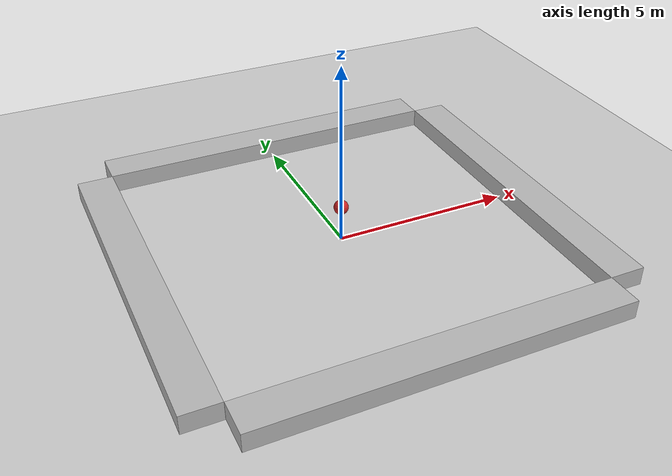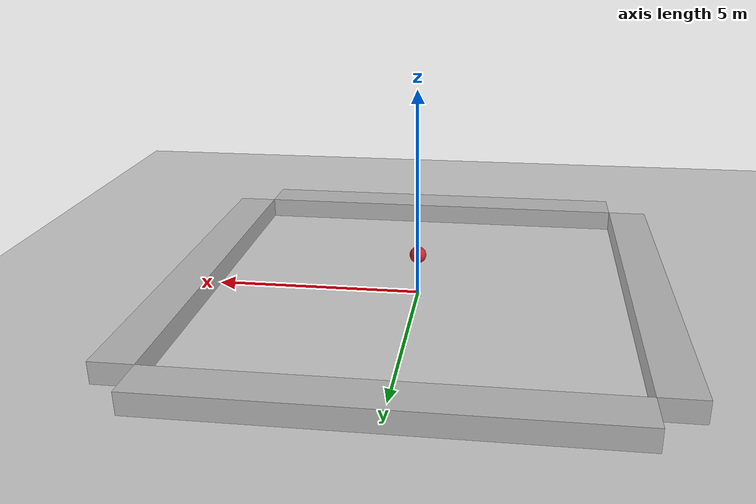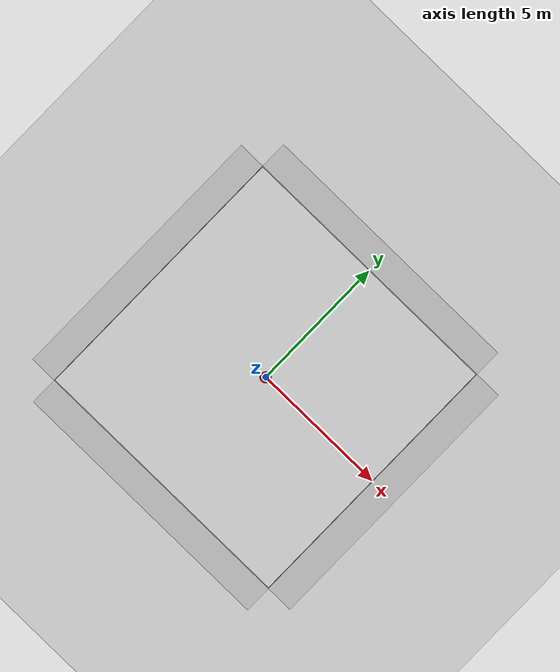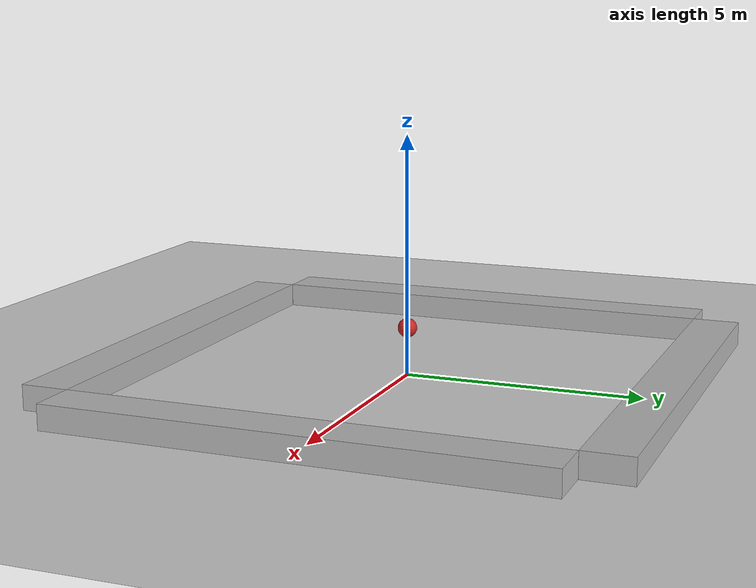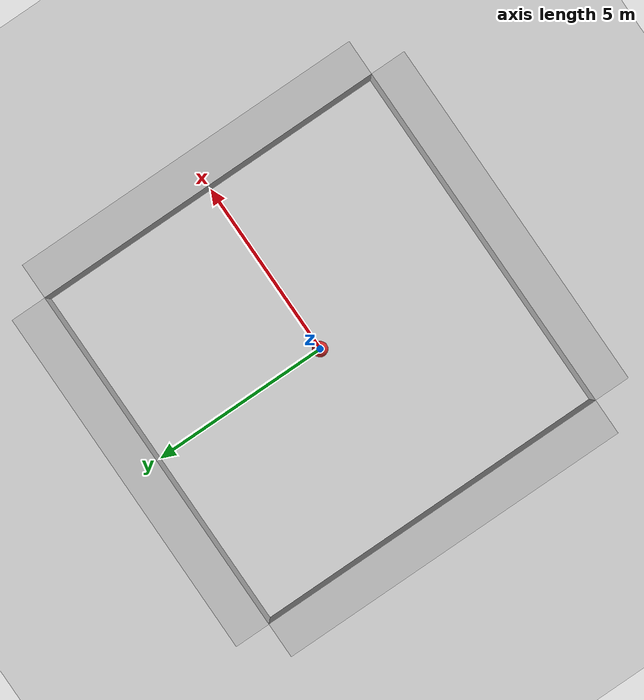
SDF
<sdf version='1.6'>
  <world name='default'>
    <light name='sun' type='directional'>
      <cast_shadows>1</cast_shadows>
      <pose frame=''>0 0 10 0 -0 0</pose>
      <diffuse>0.8 0.8 0.8 1</diffuse>
      <specular>0.1 0.1 0.1 1</specular>
      <attenuation>
        <range>1000</range>
        <constant>0.9</constant>
        <linear>0.01</linear>
        <quadratic>0.001</quadratic>
      </attenuation>
      <direction>-0.5 0.5 -1</direction>
    </light>
    <model name='ground_plane'>
      <static>1</static>
      <link name='link'>
        <collision name='collision'>
          <geometry>
            <plane>
              <normal>0 0 1</normal>
              <size>100 100</size>
            </plane>
          </geometry>
          <surface>
            <friction>
              <ode>
                <mu>100</mu>
                <mu2>50</mu2>
              </ode>
              <torsional>
                <ode/>
              </torsional>
            </friction>
            <contact>
              <ode/>
            </contact>
            <bounce/>
          </surface>
          <max_contacts>10</max_contacts>
        </collision>
        <visual name='visual'>
          <cast_shadows>0</cast_shadows>
          <geometry>
            <plane>
              <normal>0 0 1</normal>
              <size>100 100</size>
            </plane>
          </geometry>
          <material>
            <script>
              <uri>file://media/materials/scripts/gazebo.material</uri>
              <name>Gazebo/Grey</name>
            </script>
          </material>
        </visual>
        <self_collide>0</self_collide>
        <kinematic>0</kinematic>
        <gravity>1</gravity>
      </link>
    </model>
    <gravity>0 0 -9.8</gravity>
    <magnetic_field>6e-06 2.3e-05 -4.2e-05</magnetic_field>
    <atmosphere type='adiabatic'/>
    <physics name='default_physics' default='0' type='ode'>
      <max_step_size>0.001</max_step_size>
      <real_time_factor>1</real_time_factor>
      <real_time_update_rate>1000</real_time_update_rate>
    </physics>
    <scene>
      <ambient>0.4 0.4 0.4 1</ambient>
      <background>0.7 0.7 0.7 1</background>
      <shadows>1</shadows>
    </scene>
    <spherical_coordinates>
      <surface_model>EARTH_WGS84</surface_model>
      <latitude_deg>0</latitude_deg>
      <longitude_deg>0</longitude_deg>
      <elevation>0</elevation>
      <heading_deg>0</heading_deg>
    </spherical_coordinates>

    <model name='brick_box_10x1x1_s'>
      <static>1</static>
      <link name='chassis_s'>
        <pose frame=''>0 0 0 0 0 0</pose>
        <collision name='collision'>
          <geometry>
            <box>
              <size>10 1 1</size>
            </box>
          </geometry>
          <max_contacts>10</max_contacts>
          <surface>
            <contact>
              <ode/>
            </contact>
            <bounce/>
            <friction>
              <torsional>
                <ode/>
              </torsional>
              <ode/>
            </friction>
          </surface>
        </collision>
        <visual name='visual'>
          <geometry>
            <mesh>
              <uri>model://brick_box_3x1x3/meshes/simple_box.dae</uri>
              <scale>10 1 1</scale>
            </mesh>
          </geometry>
          <material>
            <script>
              <uri>model://brick_box_3x1x3/materials/scripts</uri>
              <uri>model://brick_box_3x1x3/materials/textures</uri>
              <name>BrickBox/Diffuse</name>
            </script>
          </material>
        </visual>
        <self_collide>0</self_collide>
        <kinematic>0</kinematic>
        <gravity>1</gravity>
      </link>
      <pose frame=''>0 -5.5 0 0 0 0</pose>
    </model>

    <model name='brick_box_10x1x1_e'>
      <static>1</static>
      <link name='chassis_e'>
        <pose frame=''>0 0 0 0 0 0</pose>
        <collision name='collision'>
          <geometry>
            <box>
              <size>10 1 1</size>
            </box>
          </geometry>
          <max_contacts>10</max_contacts>
          <surface>
            <contact>
              <ode/>
            </contact>
            <bounce/>
            <friction>
              <torsional>
                <ode/>
              </torsional>
              <ode/>
            </friction>
          </surface>
        </collision>
        <visual name='visual'>
          <geometry>
            <mesh>
              <uri>model://brick_box_3x1x3/meshes/simple_box.dae</uri>
              <scale>10 1 1</scale>
            </mesh>
          </geometry>
          <material>
            <script>
              <uri>model://brick_box_3x1x3/materials/scripts</uri>
              <uri>model://brick_box_3x1x3/materials/textures</uri>
              <name>BrickBox/Diffuse</name>
            </script>
          </material>
        </visual>
        <self_collide>0</self_collide>
        <kinematic>0</kinematic>
        <gravity>1</gravity>
      </link>
      <pose frame=''>5.5 0 0 0 0 1.57</pose>
    </model>

    <model name='brick_box_10x1x1_n'>
      <static>1</static>
      <link name='chassis_n'>
        <pose frame=''>0 0 0 0 0 0</pose>
        <collision name='collision'>
          <geometry>
            <box>
              <size>10 1 1</size>
            </box>
          </geometry>
          <max_contacts>10</max_contacts>
          <surface>
            <contact>
              <ode/>
            </contact>
            <bounce/>
            <friction>
              <torsional>
                <ode/>
              </torsional>
              <ode/>
            </friction>
          </surface>
        </collision>
        <visual name='visual'>
          <geometry>
            <mesh>
              <uri>model://brick_box_3x1x3/meshes/simple_box.dae</uri>
              <scale>10 1 1</scale>
            </mesh>
          </geometry>
          <material>
            <script>
              <uri>model://brick_box_3x1x3/materials/scripts</uri>
              <uri>model://brick_box_3x1x3/materials/textures</uri>
              <name>BrickBox/Diffuse</name>
            </script>
          </material>
        </visual>
        <self_collide>0</self_collide>
        <kinematic>0</kinematic>
        <gravity>1</gravity>
      </link>
      <pose frame=''>0 5.5 0 0 -0 0</pose>
    </model>

    <model name='brick_box_10x1x1_w'>
      <static>1</static>
      <link name='chassis_w'>
        <pose frame=''>0 0 0 0 0 0</pose>
        <collision name='collision'>
          <geometry>
            <box>
              <size>10 1 1</size>
            </box>
          </geometry>
          <max_contacts>10</max_contacts>
          <surface>
            <contact>
              <ode/>
            </contact>
            <bounce/>
            <friction>
              <torsional>
                <ode/>
              </torsional>
              <ode/>
            </friction>
          </surface>
        </collision>
        <visual name='visual'>
          <geometry>
            <mesh>
              <uri>model://brick_box_3x1x3/meshes/simple_box.dae</uri>
              <scale>10 1 1</scale>
            </mesh>
          </geometry>
          <material>
            <script>
              <uri>model://brick_box_3x1x3/materials/scripts</uri>
              <uri>model://brick_box_3x1x3/materials/textures</uri>
              <name>BrickBox/Diffuse</name>
            </script>
          </material>
        </visual>
        <self_collide>0</self_collide>
        <kinematic>0</kinematic>
        <gravity>1</gravity>
      </link>
      <pose frame=''>-5.5 0 0 0 0 1.57</pose>
    </model>

<model name='pin'>
    <link name='link_0'>
      <pose frame=''>0 0 0.5 0 -0 0</pose>
      <inertial>
        <mass>0.1</mass>
        <inertia>
          <ixx>0.145833</ixx>
          <ixy>0</ixy>
          <ixz>0</ixz>
          <iyy>0.145833</iyy>
          <iyz>0</iyz>
          <izz>0.125</izz>
        </inertia>
        <pose frame=''>0 0 0 0 -0 0</pose>
      </inertial>
      <gravity>1</gravity>
      <self_collide>0</self_collide>
      <kinematic>0</kinematic>
      <visual name='visual'>
        <pose frame=''>0 0 0 0 -0 0</pose>
        <geometry>
          <cylinder>
            <radius>0.05</radius>
            <length>1</length>
          </cylinder>
        </geometry>
        <material>
          <lighting>1</lighting>
          <script>
            <uri>file://media/materials/scripts/gazebo.material</uri>
            <name>Gazebo/White</name>
          </script>
          <emissive>0 0 0 1</emissive>
          <shader type='vertex'>
            <normal_map>__default__</normal_map>
          </shader>
        </material>
        <cast_shadows>1</cast_shadows>
        <transparency>0</transparency>
      </visual>
      <collision name='collision'>
        <laser_retro>0</laser_retro>
        <max_contacts>10</max_contacts>
        <pose frame=''>0 -0 -0.49995 0 -0 0</pose>
        <geometry>
          <cylinder>
            <radius>0.1</radius>
            <length>0.0001</length>
          </cylinder>
        </geometry>
        <surface>
          <friction>
            <ode>
              <mu>1</mu>
              <mu2>1</mu2>
              <fdir1>0 0 0</fdir1>
              <slip1>0</slip1>
              <slip2>0</slip2>
            </ode>
            <torsional>
              <coefficient>1</coefficient>
              <patch_radius>0</patch_radius>
              <surface_radius>0</surface_radius>
              <use_patch_radius>1</use_patch_radius>
              <ode>
                <slip>0</slip>
              </ode>
            </torsional>
          </friction>
          <bounce>
            <restitution_coefficient>0</restitution_coefficient>
            <threshold>1e+06</threshold>
          </bounce>
          <contact>
            <collide_without_contact>0</collide_without_contact>
            <collide_without_contact_bitmask>1</collide_without_contact_bitmask>
            <collide_bitmask>1</collide_bitmask>
            <ode>
              <soft_cfm>0</soft_cfm>
              <soft_erp>0.2</soft_erp>
              <kp>1e+13</kp>
              <kd>1</kd>
              <max_vel>0.01</max_vel>
              <min_depth>0</min_depth>
            </ode>
            <bullet>
              <split_impulse>1</split_impulse>
              <split_impulse_penetration_threshold>-0.01</split_impulse_penetration_threshold>
              <soft_cfm>0</soft_cfm>
              <soft_erp>0.2</soft_erp>
              <kp>1e+13</kp>
              <kd>1</kd>
            </bullet>
          </contact>
        </surface>
      </collision>
    </link>
    <link name='link_1'>
      <pose frame=''>0 0 1 0 -0 0</pose>
      <inertial>
        <mass>0.01</mass>
        <inertia>
          <ixx>0.1</ixx>
          <ixy>0</ixy>
          <ixz>0</ixz>
          <iyy>0.1</iyy>
          <iyz>0</iyz>
          <izz>0.1</izz>
        </inertia>
        <pose frame=''>0 0 0 0 -0 0</pose>
      </inertial>
      <gravity>1</gravity>
      <self_collide>0</self_collide>
      <kinematic>0</kinematic>
      <visual name='visual'>
        <pose frame=''>0 0 0 0 -0 0</pose>
        <geometry>
          <sphere>
            <radius>0.2</radius>
          </sphere>
        </geometry>
        <material>
          <lighting>1</lighting>
          <script>
            <uri>file://media/materials/scripts/gazebo.material</uri>
            <name>Gazebo/Red</name>
          </script>
          <emissive>0 0 0 1</emissive>
          <shader type='vertex'>
            <normal_map>__default__</normal_map>
          </shader>
        </material>
        <cast_shadows>1</cast_shadows>
        <transparency>0</transparency>
      </visual>
      <collision name='collision'>
        <laser_retro>0</laser_retro>
        <max_contacts>10</max_contacts>
        <pose frame=''>0 0 3 0 -0 0</pose>
        <geometry>
          <sphere>
            <radius>0.01</radius>
          </sphere>
        </geometry>
        <surface>
          <friction>
            <ode>
              <mu>1</mu>
              <mu2>1</mu2>
              <fdir1>0 0 0</fdir1>
              <slip1>0</slip1>
              <slip2>0</slip2>
            </ode>
            <torsional>
              <coefficient>1</coefficient>
              <patch_radius>0</patch_radius>
              <surface_radius>0</surface_radius>
              <use_patch_radius>1</use_patch_radius>
              <ode>
                <slip>0</slip>
              </ode>
            </torsional>
          </friction>
          <bounce>
            <restitution_coefficient>0</restitution_coefficient>
            <threshold>1e+06</threshold>
          </bounce>
          <contact>
            <collide_without_contact>0</collide_without_contact>
            <collide_without_contact_bitmask>1</collide_without_contact_bitmask>
            <collide_bitmask>1</collide_bitmask>
            <ode>
              <soft_cfm>0</soft_cfm>
              <soft_erp>0.2</soft_erp>
              <kp>1e+13</kp>
              <kd>1</kd>
              <max_vel>0.01</max_vel>
              <min_depth>0</min_depth>
            </ode>
            <bullet>
              <split_impulse>1</split_impulse>
              <split_impulse_penetration_threshold>-0.01</split_impulse_penetration_threshold>
              <soft_cfm>0</soft_cfm>
              <soft_erp>0.2</soft_erp>
              <kp>1e+13</kp>
              <kd>1</kd>
            </bullet>
          </contact>
        </surface>
      </collision>
    </link>
    <joint name='link_1_JOINT_0' type='fixed'>
      <parent>link_1</parent>
      <child>link_0</child>
      <pose frame=''>0 0 0 0 -0 0</pose>
      <physics>
        <ode>
          <limit>
            <cfm>0</cfm>
            <erp>0.2</erp>
          </limit>
          <suspension>
            <cfm>0</cfm>
            <erp>0.2</erp>
          </suspension>
        </ode>
      </physics>
    </joint>
    <static>0</static>
    <allow_auto_disable>1</allow_auto_disable>
  </model>

    <gui fullscreen='0'>
      <camera name='user_camera'>
        <pose frame=''>-9.83128 -9.78773 19.6343 0 0.855644 0.945849</pose>
        <view_controller>orbit</view_controller>
        <projection_type>perspective</projection_type>
      </camera>
    </gui>
  </world>
</sdf>
